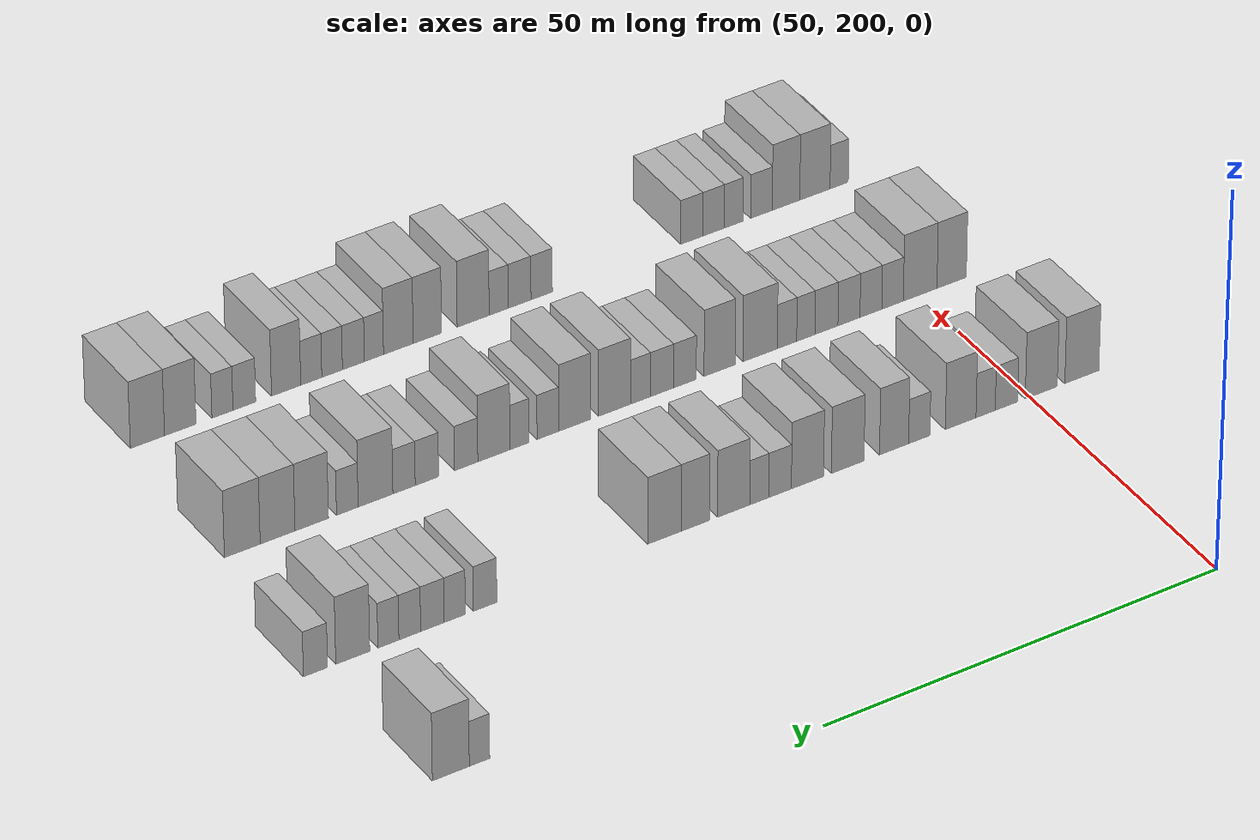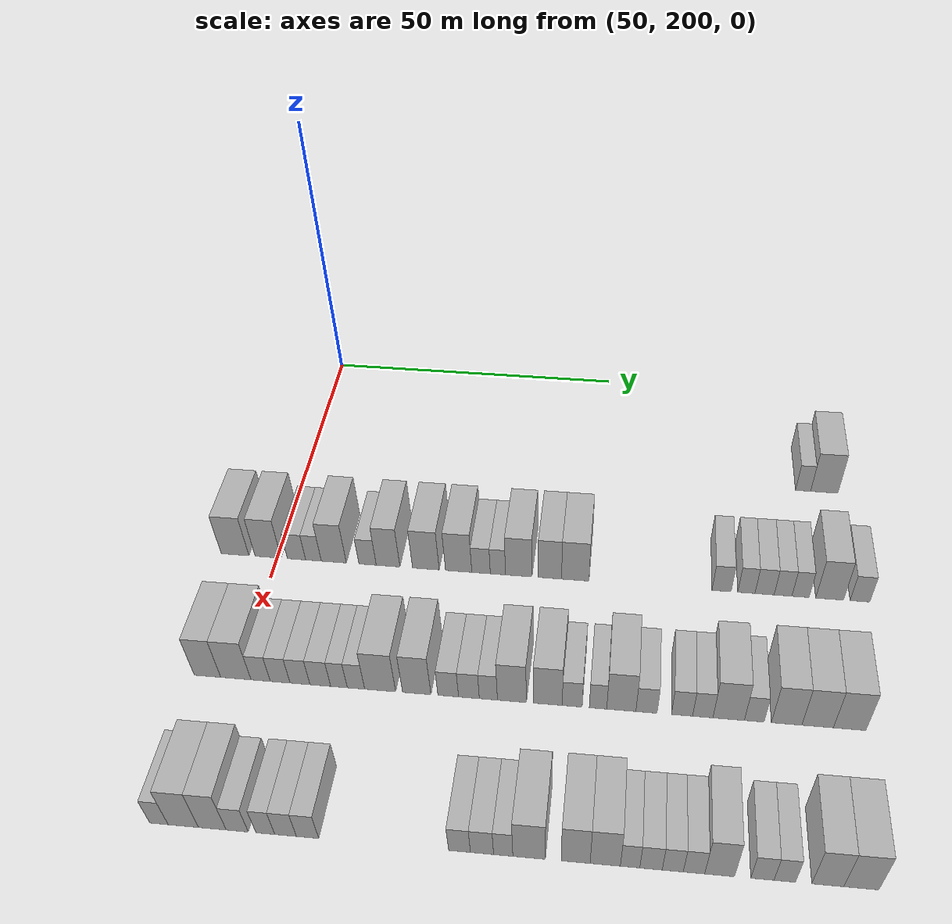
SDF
<sdf version="1.6">
 <world name="default">
  <model name="building_540">
   <static>1</static>
   <pose>69.0000 283.5938 0 0.000000 0.000000 0.000000</pose>
   <link name="link">
    <pose>0 0 3.00 0 0 0</pose>
    <collision name="collision"><geometry><box><size>10.0000 2.4946 6.0000</size></box></geometry></collision>
    <visual name="visual">
     <cast_shadows>0</cast_shadows>
     <geometry><box><size>10.0000 2.4946 6.0000</size></box></geometry>
     <material>
      <script>
       <uri>model://HANNAS_wall/materials/scripts</uri>
       <uri>model://HANNAS_wall/materials/textures</uri>
       <name>vrc/HANNAS_wall</name>
      </script>
     </material>
    </visual>
   </link>
  </model>
  <model name="building_541">
   <static>1</static>
   <pose>69.0000 287.0839 0 0.000000 0.000000 0.000000</pose>
   <link name="link">
    <pose>0 0 4.50 0 0 0</pose>
    <collision name="collision"><geometry><box><size>10.0000 4.4857 9.0000</size></box></geometry></collision>
    <visual name="visual">
     <cast_shadows>0</cast_shadows>
     <geometry><box><size>10.0000 4.4857 9.0000</size></box></geometry>
     <material>
      <script>
       <uri>model://HANNAS_wall/materials/scripts</uri>
       <uri>model://HANNAS_wall/materials/textures</uri>
       <name>vrc/HANNAS_wall</name>
      </script>
     </material>
    </visual>
   </link>
  </model>
  <model name="building_701">
   <static>1</static>
   <pose>91.0000 193.1740 0 0.000000 0.000000 0.000000</pose>
   <link name="link">
    <pose>0 0 4.50 0 0 0</pose>
    <collision name="collision"><geometry><box><size>10.0000 4.4827 9.0000</size></box></geometry></collision>
    <visual name="visual">
     <cast_shadows>0</cast_shadows>
     <geometry><box><size>10.0000 4.4827 9.0000</size></box></geometry>
     <material>
      <script>
       <uri>model://HANNAS_wall/materials/scripts</uri>
       <uri>model://HANNAS_wall/materials/textures</uri>
       <name>vrc/HANNAS_wall</name>
      </script>
     </material>
    </visual>
   </link>
  </model>
  <model name="building_702">
   <static>1</static>
   <pose>91.0000 198.5128 0 0.000000 0.000000 0.000000</pose>
   <link name="link">
    <pose>0 0 4.50 0 0 0</pose>
    <collision name="collision"><geometry><box><size>10.0000 4.1948 9.0000</size></box></geometry></collision>
    <visual name="visual">
     <cast_shadows>0</cast_shadows>
     <geometry><box><size>10.0000 4.1948 9.0000</size></box></geometry>
     <material>
      <script>
       <uri>model://HANNAS_wall/materials/scripts</uri>
       <uri>model://HANNAS_wall/materials/textures</uri>
       <name>vrc/HANNAS_wall</name>
      </script>
     </material>
    </visual>
   </link>
  </model>
  <model name="building_703">
   <static>1</static>
   <pose>91.0000 203.0746 0 0.000000 0.000000 0.000000</pose>
   <link name="link">
    <pose>0 0 3.00 0 0 0</pose>
    <collision name="collision"><geometry><box><size>10.0000 2.9290 6.0000</size></box></geometry></collision>
    <visual name="visual">
     <cast_shadows>0</cast_shadows>
     <geometry><box><size>10.0000 2.9290 6.0000</size></box></geometry>
     <material>
      <script>
       <uri>model://HANNAS_wall/materials/scripts</uri>
       <uri>model://HANNAS_wall/materials/textures</uri>
       <name>vrc/HANNAS_wall</name>
      </script>
     </material>
    </visual>
   </link>
  </model>
  <model name="building_704">
   <static>1</static>
   <pose>91.0000 205.7953 0 0.000000 0.000000 0.000000</pose>
   <link name="link">
    <pose>0 0 3.00 0 0 0</pose>
    <collision name="collision"><geometry><box><size>10.0000 2.5124 6.0000</size></box></geometry></collision>
    <visual name="visual">
     <cast_shadows>0</cast_shadows>
     <geometry><box><size>10.0000 2.5124 6.0000</size></box></geometry>
     <material>
      <script>
       <uri>model://HANNAS_wall/materials/scripts</uri>
       <uri>model://HANNAS_wall/materials/textures</uri>
       <name>vrc/HANNAS_wall</name>
      </script>
     </material>
    </visual>
   </link>
  </model>
  <model name="building_705">
   <static>1</static>
   <pose>91.0000 209.0476 0 0.000000 0.000000 0.000000</pose>
   <link name="link">
    <pose>0 0 4.50 0 0 0</pose>
    <collision name="collision"><geometry><box><size>10.0000 3.9921 9.0000</size></box></geometry></collision>
    <visual name="visual">
     <cast_shadows>0</cast_shadows>
     <geometry><box><size>10.0000 3.9921 9.0000</size></box></geometry>
     <material>
      <script>
       <uri>model://HANNAS_wall/materials/scripts</uri>
       <uri>model://HANNAS_wall/materials/textures</uri>
       <name>vrc/HANNAS_wall</name>
      </script>
     </material>
    </visual>
   </link>
  </model>
  <model name="building_706">
   <static>1</static>
   <pose>91.0000 214.4256 0 0.000000 0.000000 0.000000</pose>
   <link name="link">
    <pose>0 0 3.00 0 0 0</pose>
    <collision name="collision"><geometry><box><size>10.0000 2.7640 6.0000</size></box></geometry></collision>
    <visual name="visual">
     <cast_shadows>0</cast_shadows>
     <geometry><box><size>10.0000 2.7640 6.0000</size></box></geometry>
     <material>
      <script>
       <uri>model://HANNAS_wall/materials/scripts</uri>
       <uri>model://HANNAS_wall/materials/textures</uri>
       <name>vrc/HANNAS_wall</name>
      </script>
     </material>
    </visual>
   </link>
  </model>
  <model name="building_707">
   <static>1</static>
   <pose>91.0000 217.6890 0 0.000000 0.000000 0.000000</pose>
   <link name="link">
    <pose>0 0 4.50 0 0 0</pose>
    <collision name="collision"><geometry><box><size>10.0000 3.7628 9.0000</size></box></geometry></collision>
    <visual name="visual">
     <cast_shadows>0</cast_shadows>
     <geometry><box><size>10.0000 3.7628 9.0000</size></box></geometry>
     <material>
      <script>
       <uri>model://HANNAS_wall/materials/scripts</uri>
       <uri>model://HANNAS_wall/materials/textures</uri>
       <name>vrc/HANNAS_wall</name>
      </script>
     </material>
    </visual>
   </link>
  </model>
  <model name="building_708">
   <static>1</static>
   <pose>91.0000 223.6718 0 0.000000 0.000000 0.000000</pose>
   <link name="link">
    <pose>0 0 4.50 0 0 0</pose>
    <collision name="collision"><geometry><box><size>10.0000 4.2029 9.0000</size></box></geometry></collision>
    <visual name="visual">
     <cast_shadows>0</cast_shadows>
     <geometry><box><size>10.0000 4.2029 9.0000</size></box></geometry>
     <material>
      <script>
       <uri>model://HANNAS_wall/materials/scripts</uri>
       <uri>model://HANNAS_wall/materials/textures</uri>
       <name>vrc/HANNAS_wall</name>
      </script>
     </material>
    </visual>
   </link>
  </model>
  <model name="building_709">
   <static>1</static>
   <pose>91.0000 228.8378 0 0.000000 0.000000 0.000000</pose>
   <link name="link">
    <pose>0 0 4.50 0 0 0</pose>
    <collision name="collision"><geometry><box><size>10.0000 4.1292 9.0000</size></box></geometry></collision>
    <visual name="visual">
     <cast_shadows>0</cast_shadows>
     <geometry><box><size>10.0000 4.1292 9.0000</size></box></geometry>
     <material>
      <script>
       <uri>model://HANNAS_wall/materials/scripts</uri>
       <uri>model://HANNAS_wall/materials/textures</uri>
       <name>vrc/HANNAS_wall</name>
      </script>
     </material>
    </visual>
   </link>
  </model>
  <model name="building_710">
   <static>1</static>
   <pose>91.0000 232.3506 0 0.000000 0.000000 0.000000</pose>
   <link name="link">
    <pose>0 0 3.00 0 0 0</pose>
    <collision name="collision"><geometry><box><size>10.0000 2.8962 6.0000</size></box></geometry></collision>
    <visual name="visual">
     <cast_shadows>0</cast_shadows>
     <geometry><box><size>10.0000 2.8962 6.0000</size></box></geometry>
     <material>
      <script>
       <uri>model://HANNAS_wall/materials/scripts</uri>
       <uri>model://HANNAS_wall/materials/textures</uri>
       <name>vrc/HANNAS_wall</name>
      </script>
     </material>
    </visual>
   </link>
  </model>
  <model name="building_711">
   <static>1</static>
   <pose>91.0000 234.9987 0 0.000000 0.000000 0.000000</pose>
   <link name="link">
    <pose>0 0 3.00 0 0 0</pose>
    <collision name="collision"><geometry><box><size>10.0000 2.4000 6.0000</size></box></geometry></collision>
    <visual name="visual">
     <cast_shadows>0</cast_shadows>
     <geometry><box><size>10.0000 2.4000 6.0000</size></box></geometry>
     <material>
      <script>
       <uri>model://HANNAS_wall/materials/scripts</uri>
       <uri>model://HANNAS_wall/materials/textures</uri>
       <name>vrc/HANNAS_wall</name>
      </script>
     </material>
    </visual>
   </link>
  </model>
  <model name="building_712">
   <static>1</static>
   <pose>91.0000 238.2613 0 0.000000 0.000000 0.000000</pose>
   <link name="link">
    <pose>0 0 4.50 0 0 0</pose>
    <collision name="collision"><geometry><box><size>10.0000 4.1251 9.0000</size></box></geometry></collision>
    <visual name="visual">
     <cast_shadows>0</cast_shadows>
     <geometry><box><size>10.0000 4.1251 9.0000</size></box></geometry>
     <material>
      <script>
       <uri>model://HANNAS_wall/materials/scripts</uri>
       <uri>model://HANNAS_wall/materials/textures</uri>
       <name>vrc/HANNAS_wall</name>
      </script>
     </material>
    </visual>
   </link>
  </model>
  <model name="building_713">
   <static>1</static>
   <pose>91.0000 243.1254 0 0.000000 0.000000 0.000000</pose>
   <link name="link">
    <pose>0 0 4.50 0 0 0</pose>
    <collision name="collision"><geometry><box><size>10.0000 3.6031 9.0000</size></box></geometry></collision>
    <visual name="visual">
     <cast_shadows>0</cast_shadows>
     <geometry><box><size>10.0000 3.6031 9.0000</size></box></geometry>
     <material>
      <script>
       <uri>model://HANNAS_wall/materials/scripts</uri>
       <uri>model://HANNAS_wall/materials/textures</uri>
       <name>vrc/HANNAS_wall</name>
      </script>
     </material>
    </visual>
   </link>
  </model>
  <model name="building_714">
   <static>1</static>
   <pose>91.0000 247.0495 0 0.000000 0.000000 0.000000</pose>
   <link name="link">
    <pose>0 0 4.50 0 0 0</pose>
    <collision name="collision"><geometry><box><size>10.0000 4.2451 9.0000</size></box></geometry></collision>
    <visual name="visual">
     <cast_shadows>0</cast_shadows>
     <geometry><box><size>10.0000 4.2451 9.0000</size></box></geometry>
     <material>
      <script>
       <uri>model://HANNAS_wall/materials/scripts</uri>
       <uri>model://HANNAS_wall/materials/textures</uri>
       <name>vrc/HANNAS_wall</name>
      </script>
     </material>
    </visual>
   </link>
  </model>
  <model name="building_715">
   <static>1</static>
   <pose>91.0000 269.5402 0 0.000000 0.000000 0.000000</pose>
   <link name="link">
    <pose>0 0 3.00 0 0 0</pose>
    <collision name="collision"><geometry><box><size>10.0000 2.9121 6.0000</size></box></geometry></collision>
    <visual name="visual">
     <cast_shadows>0</cast_shadows>
     <geometry><box><size>10.0000 2.9121 6.0000</size></box></geometry>
     <material>
      <script>
       <uri>model://HANNAS_wall/materials/scripts</uri>
       <uri>model://HANNAS_wall/materials/textures</uri>
       <name>vrc/HANNAS_wall</name>
      </script>
     </material>
    </visual>
   </link>
  </model>
  <model name="building_716">
   <static>1</static>
   <pose>91.0000 273.3073 0 0.000000 0.000000 0.000000</pose>
   <link name="link">
    <pose>0 0 3.00 0 0 0</pose>
    <collision name="collision"><geometry><box><size>10.0000 2.6223 6.0000</size></box></geometry></collision>
    <visual name="visual">
     <cast_shadows>0</cast_shadows>
     <geometry><box><size>10.0000 2.6223 6.0000</size></box></geometry>
     <material>
      <script>
       <uri>model://HANNAS_wall/materials/scripts</uri>
       <uri>model://HANNAS_wall/materials/textures</uri>
       <name>vrc/HANNAS_wall</name>
      </script>
     </material>
    </visual>
   </link>
  </model>
  <model name="building_717">
   <static>1</static>
   <pose>91.0000 276.0713 0 0.000000 0.000000 0.000000</pose>
   <link name="link">
    <pose>0 0 3.00 0 0 0</pose>
    <collision name="collision"><geometry><box><size>10.0000 2.9056 6.0000</size></box></geometry></collision>
    <visual name="visual">
     <cast_shadows>0</cast_shadows>
     <geometry><box><size>10.0000 2.9056 6.0000</size></box></geometry>
     <material>
      <script>
       <uri>model://HANNAS_wall/materials/scripts</uri>
       <uri>model://HANNAS_wall/materials/textures</uri>
       <name>vrc/HANNAS_wall</name>
      </script>
     </material>
    </visual>
   </link>
  </model>
  <model name="building_718">
   <static>1</static>
   <pose>91.0000 278.8679 0 0.000000 0.000000 0.000000</pose>
   <link name="link">
    <pose>0 0 3.00 0 0 0</pose>
    <collision name="collision"><geometry><box><size>10.0000 2.6875 6.0000</size></box></geometry></collision>
    <visual name="visual">
     <cast_shadows>0</cast_shadows>
     <geometry><box><size>10.0000 2.6875 6.0000</size></box></geometry>
     <material>
      <script>
       <uri>model://HANNAS_wall/materials/scripts</uri>
       <uri>model://HANNAS_wall/materials/textures</uri>
       <name>vrc/HANNAS_wall</name>
      </script>
     </material>
    </visual>
   </link>
  </model>
  <model name="building_719">
   <static>1</static>
   <pose>91.0000 281.5054 0 0.000000 0.000000 0.000000</pose>
   <link name="link">
    <pose>0 0 3.00 0 0 0</pose>
    <collision name="collision"><geometry><box><size>10.0000 2.5876 6.0000</size></box></geometry></collision>
    <visual name="visual">
     <cast_shadows>0</cast_shadows>
     <geometry><box><size>10.0000 2.5876 6.0000</size></box></geometry>
     <material>
      <script>
       <uri>model://HANNAS_wall/materials/scripts</uri>
       <uri>model://HANNAS_wall/materials/textures</uri>
       <name>vrc/HANNAS_wall</name>
      </script>
     </material>
    </visual>
   </link>
  </model>
  <model name="building_720">
   <static>1</static>
   <pose>91.0000 285.8866 0 0.000000 0.000000 0.000000</pose>
   <link name="link">
    <pose>0 0 4.50 0 0 0</pose>
    <collision name="collision"><geometry><box><size>10.0000 4.1748 9.0000</size></box></geometry></collision>
    <visual name="visual">
     <cast_shadows>0</cast_shadows>
     <geometry><box><size>10.0000 4.1748 9.0000</size></box></geometry>
     <material>
      <script>
       <uri>model://HANNAS_wall/materials/scripts</uri>
       <uri>model://HANNAS_wall/materials/textures</uri>
       <name>vrc/HANNAS_wall</name>
      </script>
     </material>
    </visual>
   </link>
  </model>
  <model name="building_721">
   <static>1</static>
   <pose>91.0000 290.4511 0 0.000000 0.000000 0.000000</pose>
   <link name="link">
    <pose>0 0 3.00 0 0 0</pose>
    <collision name="collision"><geometry><box><size>10.0000 2.9542 6.0000</size></box></geometry></collision>
    <visual name="visual">
     <cast_shadows>0</cast_shadows>
     <geometry><box><size>10.0000 2.9542 6.0000</size></box></geometry>
     <material>
      <script>
       <uri>model://HANNAS_wall/materials/scripts</uri>
       <uri>model://HANNAS_wall/materials/textures</uri>
       <name>vrc/HANNAS_wall</name>
      </script>
     </material>
    </visual>
   </link>
  </model>
  <model name="building_884">
   <static>1</static>
   <pose>113.0000 195.7243 0 0.000000 0.000000 0.000000</pose>
   <link name="link">
    <pose>0 0 4.50 0 0 0</pose>
    <collision name="collision"><geometry><box><size>10.0000 3.8899 9.0000</size></box></geometry></collision>
    <visual name="visual">
     <cast_shadows>0</cast_shadows>
     <geometry><box><size>10.0000 3.8899 9.0000</size></box></geometry>
     <material>
      <script>
       <uri>model://HANNAS_wall/materials/scripts</uri>
       <uri>model://HANNAS_wall/materials/textures</uri>
       <name>vrc/HANNAS_wall</name>
      </script>
     </material>
    </visual>
   </link>
  </model>
  <model name="building_885">
   <static>1</static>
   <pose>113.0000 199.8910 0 0.000000 0.000000 0.000000</pose>
   <link name="link">
    <pose>0 0 4.50 0 0 0</pose>
    <collision name="collision"><geometry><box><size>10.0000 4.4435 9.0000</size></box></geometry></collision>
    <visual name="visual">
     <cast_shadows>0</cast_shadows>
     <geometry><box><size>10.0000 4.4435 9.0000</size></box></geometry>
     <material>
      <script>
       <uri>model://HANNAS_wall/materials/scripts</uri>
       <uri>model://HANNAS_wall/materials/textures</uri>
       <name>vrc/HANNAS_wall</name>
      </script>
     </material>
    </visual>
   </link>
  </model>
  <model name="building_886">
   <static>1</static>
   <pose>113.0000 203.5288 0 0.000000 0.000000 0.000000</pose>
   <link name="link">
    <pose>0 0 3.00 0 0 0</pose>
    <collision name="collision"><geometry><box><size>10.0000 2.8321 6.0000</size></box></geometry></collision>
    <visual name="visual">
     <cast_shadows>0</cast_shadows>
     <geometry><box><size>10.0000 2.8321 6.0000</size></box></geometry>
     <material>
      <script>
       <uri>model://HANNAS_wall/materials/scripts</uri>
       <uri>model://HANNAS_wall/materials/textures</uri>
       <name>vrc/HANNAS_wall</name>
      </script>
     </material>
    </visual>
   </link>
  </model>
  <model name="building_887">
   <static>1</static>
   <pose>113.0000 206.3816 0 0.000000 0.000000 0.000000</pose>
   <link name="link">
    <pose>0 0 3.00 0 0 0</pose>
    <collision name="collision"><geometry><box><size>10.0000 2.8736 6.0000</size></box></geometry></collision>
    <visual name="visual">
     <cast_shadows>0</cast_shadows>
     <geometry><box><size>10.0000 2.8736 6.0000</size></box></geometry>
     <material>
      <script>
       <uri>model://HANNAS_wall/materials/scripts</uri>
       <uri>model://HANNAS_wall/materials/textures</uri>
       <name>vrc/HANNAS_wall</name>
      </script>
     </material>
    </visual>
   </link>
  </model>
  <model name="building_888">
   <static>1</static>
   <pose>113.0000 209.2658 0 0.000000 0.000000 0.000000</pose>
   <link name="link">
    <pose>0 0 3.00 0 0 0</pose>
    <collision name="collision"><geometry><box><size>10.0000 2.8949 6.0000</size></box></geometry></collision>
    <visual name="visual">
     <cast_shadows>0</cast_shadows>
     <geometry><box><size>10.0000 2.8949 6.0000</size></box></geometry>
     <material>
      <script>
       <uri>model://HANNAS_wall/materials/scripts</uri>
       <uri>model://HANNAS_wall/materials/textures</uri>
       <name>vrc/HANNAS_wall</name>
      </script>
     </material>
    </visual>
   </link>
  </model>
  <model name="building_889">
   <static>1</static>
   <pose>113.0000 212.2096 0 0.000000 0.000000 0.000000</pose>
   <link name="link">
    <pose>0 0 3.00 0 0 0</pose>
    <collision name="collision"><geometry><box><size>10.0000 2.9926 6.0000</size></box></geometry></collision>
    <visual name="visual">
     <cast_shadows>0</cast_shadows>
     <geometry><box><size>10.0000 2.9926 6.0000</size></box></geometry>
     <material>
      <script>
       <uri>model://HANNAS_wall/materials/scripts</uri>
       <uri>model://HANNAS_wall/materials/textures</uri>
       <name>vrc/HANNAS_wall</name>
      </script>
     </material>
    </visual>
   </link>
  </model>
  <model name="building_890">
   <static>1</static>
   <pose>113.0000 214.9083 0 0.000000 0.000000 0.000000</pose>
   <link name="link">
    <pose>0 0 3.00 0 0 0</pose>
    <collision name="collision"><geometry><box><size>10.0000 2.4049 6.0000</size></box></geometry></collision>
    <visual name="visual">
     <cast_shadows>0</cast_shadows>
     <geometry><box><size>10.0000 2.4049 6.0000</size></box></geometry>
     <material>
      <script>
       <uri>model://HANNAS_wall/materials/scripts</uri>
       <uri>model://HANNAS_wall/materials/textures</uri>
       <name>vrc/HANNAS_wall</name>
      </script>
     </material>
    </visual>
   </link>
  </model>
  <model name="building_891">
   <static>1</static>
   <pose>113.0000 217.3667 0 0.000000 0.000000 0.000000</pose>
   <link name="link">
    <pose>0 0 3.00 0 0 0</pose>
    <collision name="collision"><geometry><box><size>10.0000 2.5119 6.0000</size></box></geometry></collision>
    <visual name="visual">
     <cast_shadows>0</cast_shadows>
     <geometry><box><size>10.0000 2.5119 6.0000</size></box></geometry>
     <material>
      <script>
       <uri>model://HANNAS_wall/materials/scripts</uri>
       <uri>model://HANNAS_wall/materials/textures</uri>
       <name>vrc/HANNAS_wall</name>
      </script>
     </material>
    </visual>
   </link>
  </model>
  <model name="building_892">
   <static>1</static>
   <pose>113.0000 220.8557 0 0.000000 0.000000 0.000000</pose>
   <link name="link">
    <pose>0 0 4.50 0 0 0</pose>
    <collision name="collision"><geometry><box><size>10.0000 4.4663 9.0000</size></box></geometry></collision>
    <visual name="visual">
     <cast_shadows>0</cast_shadows>
     <geometry><box><size>10.0000 4.4663 9.0000</size></box></geometry>
     <material>
      <script>
       <uri>model://HANNAS_wall/materials/scripts</uri>
       <uri>model://HANNAS_wall/materials/textures</uri>
       <name>vrc/HANNAS_wall</name>
      </script>
     </material>
    </visual>
   </link>
  </model>
  <model name="building_893">
   <static>1</static>
   <pose>113.0000 226.1174 0 0.000000 0.000000 0.000000</pose>
   <link name="link">
    <pose>0 0 4.50 0 0 0</pose>
    <collision name="collision"><geometry><box><size>10.0000 4.0571 9.0000</size></box></geometry></collision>
    <visual name="visual">
     <cast_shadows>0</cast_shadows>
     <geometry><box><size>10.0000 4.0571 9.0000</size></box></geometry>
     <material>
      <script>
       <uri>model://HANNAS_wall/materials/scripts</uri>
       <uri>model://HANNAS_wall/materials/textures</uri>
       <name>vrc/HANNAS_wall</name>
      </script>
     </material>
    </visual>
   </link>
  </model>
  <model name="building_894">
   <static>1</static>
   <pose>113.0000 230.6170 0 0.000000 0.000000 0.000000</pose>
   <link name="link">
    <pose>0 0 3.00 0 0 0</pose>
    <collision name="collision"><geometry><box><size>10.0000 2.9420 6.0000</size></box></geometry></collision>
    <visual name="visual">
     <cast_shadows>0</cast_shadows>
     <geometry><box><size>10.0000 2.9420 6.0000</size></box></geometry>
     <material>
      <script>
       <uri>model://HANNAS_wall/materials/scripts</uri>
       <uri>model://HANNAS_wall/materials/textures</uri>
       <name>vrc/HANNAS_wall</name>
      </script>
     </material>
    </visual>
   </link>
  </model>
  <model name="building_895">
   <static>1</static>
   <pose>113.0000 233.5655 0 0.000000 0.000000 0.000000</pose>
   <link name="link">
    <pose>0 0 3.00 0 0 0</pose>
    <collision name="collision"><geometry><box><size>10.0000 2.9550 6.0000</size></box></geometry></collision>
    <visual name="visual">
     <cast_shadows>0</cast_shadows>
     <geometry><box><size>10.0000 2.9550 6.0000</size></box></geometry>
     <material>
      <script>
       <uri>model://HANNAS_wall/materials/scripts</uri>
       <uri>model://HANNAS_wall/materials/textures</uri>
       <name>vrc/HANNAS_wall</name>
      </script>
     </material>
    </visual>
   </link>
  </model>
  <model name="building_896">
   <static>1</static>
   <pose>113.0000 236.3300 0 0.000000 0.000000 0.000000</pose>
   <link name="link">
    <pose>0 0 3.00 0 0 0</pose>
    <collision name="collision"><geometry><box><size>10.0000 2.5739 6.0000</size></box></geometry></collision>
    <visual name="visual">
     <cast_shadows>0</cast_shadows>
     <geometry><box><size>10.0000 2.5739 6.0000</size></box></geometry>
     <material>
      <script>
       <uri>model://HANNAS_wall/materials/scripts</uri>
       <uri>model://HANNAS_wall/materials/textures</uri>
       <name>vrc/HANNAS_wall</name>
      </script>
     </material>
    </visual>
   </link>
  </model>
  <model name="building_897">
   <static>1</static>
   <pose>113.0000 239.6695 0 0.000000 0.000000 0.000000</pose>
   <link name="link">
    <pose>0 0 4.50 0 0 0</pose>
    <collision name="collision"><geometry><box><size>10.0000 4.1053 9.0000</size></box></geometry></collision>
    <visual name="visual">
     <cast_shadows>0</cast_shadows>
     <geometry><box><size>10.0000 4.1053 9.0000</size></box></geometry>
     <material>
      <script>
       <uri>model://HANNAS_wall/materials/scripts</uri>
       <uri>model://HANNAS_wall/materials/textures</uri>
       <name>vrc/HANNAS_wall</name>
      </script>
     </material>
    </visual>
   </link>
  </model>
  <model name="building_898">
   <static>1</static>
   <pose>113.0000 244.7543 0 0.000000 0.000000 0.000000</pose>
   <link name="link">
    <pose>0 0 4.50 0 0 0</pose>
    <collision name="collision"><geometry><box><size>10.0000 4.0642 9.0000</size></box></geometry></collision>
    <visual name="visual">
     <cast_shadows>0</cast_shadows>
     <geometry><box><size>10.0000 4.0642 9.0000</size></box></geometry>
     <material>
      <script>
       <uri>model://HANNAS_wall/materials/scripts</uri>
       <uri>model://HANNAS_wall/materials/textures</uri>
       <name>vrc/HANNAS_wall</name>
      </script>
     </material>
    </visual>
   </link>
  </model>
  <model name="building_899">
   <static>1</static>
   <pose>113.0000 248.1827 0 0.000000 0.000000 0.000000</pose>
   <link name="link">
    <pose>0 0 3.00 0 0 0</pose>
    <collision name="collision"><geometry><box><size>10.0000 2.7926 6.0000</size></box></geometry></collision>
    <visual name="visual">
     <cast_shadows>0</cast_shadows>
     <geometry><box><size>10.0000 2.7926 6.0000</size></box></geometry>
     <material>
      <script>
       <uri>model://HANNAS_wall/materials/scripts</uri>
       <uri>model://HANNAS_wall/materials/textures</uri>
       <name>vrc/HANNAS_wall</name>
      </script>
     </material>
    </visual>
   </link>
  </model>
  <model name="building_900">
   <static>1</static>
   <pose>113.0000 251.7955 0 0.000000 0.000000 0.000000</pose>
   <link name="link">
    <pose>0 0 3.00 0 0 0</pose>
    <collision name="collision"><geometry><box><size>10.0000 2.4329 6.0000</size></box></geometry></collision>
    <visual name="visual">
     <cast_shadows>0</cast_shadows>
     <geometry><box><size>10.0000 2.4329 6.0000</size></box></geometry>
     <material>
      <script>
       <uri>model://HANNAS_wall/materials/scripts</uri>
       <uri>model://HANNAS_wall/materials/textures</uri>
       <name>vrc/HANNAS_wall</name>
      </script>
     </material>
    </visual>
   </link>
  </model>
  <model name="building_901">
   <static>1</static>
   <pose>113.0000 255.0531 0 0.000000 0.000000 0.000000</pose>
   <link name="link">
    <pose>0 0 4.50 0 0 0</pose>
    <collision name="collision"><geometry><box><size>10.0000 4.0824 9.0000</size></box></geometry></collision>
    <visual name="visual">
     <cast_shadows>0</cast_shadows>
     <geometry><box><size>10.0000 4.0824 9.0000</size></box></geometry>
     <material>
      <script>
       <uri>model://HANNAS_wall/materials/scripts</uri>
       <uri>model://HANNAS_wall/materials/textures</uri>
       <name>vrc/HANNAS_wall</name>
      </script>
     </material>
    </visual>
   </link>
  </model>
  <model name="building_902">
   <static>1</static>
   <pose>113.0000 258.5711 0 0.000000 0.000000 0.000000</pose>
   <link name="link">
    <pose>0 0 3.00 0 0 0</pose>
    <collision name="collision"><geometry><box><size>10.0000 2.9535 6.0000</size></box></geometry></collision>
    <visual name="visual">
     <cast_shadows>0</cast_shadows>
     <geometry><box><size>10.0000 2.9535 6.0000</size></box></geometry>
     <material>
      <script>
       <uri>model://HANNAS_wall/materials/scripts</uri>
       <uri>model://HANNAS_wall/materials/textures</uri>
       <name>vrc/HANNAS_wall</name>
      </script>
     </material>
    </visual>
   </link>
  </model>
  <model name="building_903">
   <static>1</static>
   <pose>113.0000 263.5199 0 0.000000 0.000000 0.000000</pose>
   <link name="link">
    <pose>0 0 3.00 0 0 0</pose>
    <collision name="collision"><geometry><box><size>10.0000 2.9441 6.0000</size></box></geometry></collision>
    <visual name="visual">
     <cast_shadows>0</cast_shadows>
     <geometry><box><size>10.0000 2.9441 6.0000</size></box></geometry>
     <material>
      <script>
       <uri>model://HANNAS_wall/materials/scripts</uri>
       <uri>model://HANNAS_wall/materials/textures</uri>
       <name>vrc/HANNAS_wall</name>
      </script>
     </material>
    </visual>
   </link>
  </model>
  <model name="building_904">
   <static>1</static>
   <pose>113.0000 266.3961 0 0.000000 0.000000 0.000000</pose>
   <link name="link">
    <pose>0 0 3.00 0 0 0</pose>
    <collision name="collision"><geometry><box><size>10.0000 2.8085 6.0000</size></box></geometry></collision>
    <visual name="visual">
     <cast_shadows>0</cast_shadows>
     <geometry><box><size>10.0000 2.8085 6.0000</size></box></geometry>
     <material>
      <script>
       <uri>model://HANNAS_wall/materials/scripts</uri>
       <uri>model://HANNAS_wall/materials/textures</uri>
       <name>vrc/HANNAS_wall</name>
      </script>
     </material>
    </visual>
   </link>
  </model>
  <model name="building_905">
   <static>1</static>
   <pose>113.0000 269.9735 0 0.000000 0.000000 0.000000</pose>
   <link name="link">
    <pose>0 0 4.50 0 0 0</pose>
    <collision name="collision"><geometry><box><size>10.0000 4.3463 9.0000</size></box></geometry></collision>
    <visual name="visual">
     <cast_shadows>0</cast_shadows>
     <geometry><box><size>10.0000 4.3463 9.0000</size></box></geometry>
     <material>
      <script>
       <uri>model://HANNAS_wall/materials/scripts</uri>
       <uri>model://HANNAS_wall/materials/textures</uri>
       <name>vrc/HANNAS_wall</name>
      </script>
     </material>
    </visual>
   </link>
  </model>
  <model name="building_906">
   <static>1</static>
   <pose>113.0000 273.5010 0 0.000000 0.000000 0.000000</pose>
   <link name="link">
    <pose>0 0 3.00 0 0 0</pose>
    <collision name="collision"><geometry><box><size>10.0000 2.7088 6.0000</size></box></geometry></collision>
    <visual name="visual">
     <cast_shadows>0</cast_shadows>
     <geometry><box><size>10.0000 2.7088 6.0000</size></box></geometry>
     <material>
      <script>
       <uri>model://HANNAS_wall/materials/scripts</uri>
       <uri>model://HANNAS_wall/materials/textures</uri>
       <name>vrc/HANNAS_wall</name>
      </script>
     </material>
    </visual>
   </link>
  </model>
  <model name="building_907">
   <static>1</static>
   <pose>113.0000 277.9385 0 0.000000 0.000000 0.000000</pose>
   <link name="link">
    <pose>0 0 4.50 0 0 0</pose>
    <collision name="collision"><geometry><box><size>10.0000 4.1662 9.0000</size></box></geometry></collision>
    <visual name="visual">
     <cast_shadows>0</cast_shadows>
     <geometry><box><size>10.0000 4.1662 9.0000</size></box></geometry>
     <material>
      <script>
       <uri>model://HANNAS_wall/materials/scripts</uri>
       <uri>model://HANNAS_wall/materials/textures</uri>
       <name>vrc/HANNAS_wall</name>
      </script>
     </material>
    </visual>
   </link>
  </model>
  <model name="building_908">
   <static>1</static>
   <pose>113.0000 282.1835 0 0.000000 0.000000 0.000000</pose>
   <link name="link">
    <pose>0 0 4.50 0 0 0</pose>
    <collision name="collision"><geometry><box><size>10.0000 4.3238 9.0000</size></box></geometry></collision>
    <visual name="visual">
     <cast_shadows>0</cast_shadows>
     <geometry><box><size>10.0000 4.3238 9.0000</size></box></geometry>
     <material>
      <script>
       <uri>model://HANNAS_wall/materials/scripts</uri>
       <uri>model://HANNAS_wall/materials/textures</uri>
       <name>vrc/HANNAS_wall</name>
      </script>
     </material>
    </visual>
   </link>
  </model>
  <model name="building_909">
   <static>1</static>
   <pose>113.0000 286.5595 0 0.000000 0.000000 0.000000</pose>
   <link name="link">
    <pose>0 0 4.50 0 0 0</pose>
    <collision name="collision"><geometry><box><size>10.0000 4.4284 9.0000</size></box></geometry></collision>
    <visual name="visual">
     <cast_shadows>0</cast_shadows>
     <geometry><box><size>10.0000 4.4284 9.0000</size></box></geometry>
     <material>
      <script>
       <uri>model://HANNAS_wall/materials/scripts</uri>
       <uri>model://HANNAS_wall/materials/textures</uri>
       <name>vrc/HANNAS_wall</name>
      </script>
     </material>
    </visual>
   </link>
  </model>
  <model name="building_1085">
   <static>1</static>
   <pose>135.0000 196.3331 0 0.000000 0.000000 0.000000</pose>
   <link name="link">
    <pose>0 0 3.00 0 0 0</pose>
    <collision name="collision"><geometry><box><size>10.0000 2.4320 6.0000</size></box></geometry></collision>
    <visual name="visual">
     <cast_shadows>0</cast_shadows>
     <geometry><box><size>10.0000 2.4320 6.0000</size></box></geometry>
     <material>
      <script>
       <uri>model://HANNAS_wall/materials/scripts</uri>
       <uri>model://HANNAS_wall/materials/textures</uri>
       <name>vrc/HANNAS_wall</name>
      </script>
     </material>
    </visual>
   </link>
  </model>
  <model name="building_1086">
   <static>1</static>
   <pose>135.0000 199.5617 0 0.000000 0.000000 0.000000</pose>
   <link name="link">
    <pose>0 0 4.50 0 0 0</pose>
    <collision name="collision"><geometry><box><size>10.0000 4.0253 9.0000</size></box></geometry></collision>
    <visual name="visual">
     <cast_shadows>0</cast_shadows>
     <geometry><box><size>10.0000 4.0253 9.0000</size></box></geometry>
     <material>
      <script>
       <uri>model://HANNAS_wall/materials/scripts</uri>
       <uri>model://HANNAS_wall/materials/textures</uri>
       <name>vrc/HANNAS_wall</name>
      </script>
     </material>
    </visual>
   </link>
  </model>
  <model name="building_1087">
   <static>1</static>
   <pose>135.0000 203.3992 0 0.000000 0.000000 0.000000</pose>
   <link name="link">
    <pose>0 0 4.50 0 0 0</pose>
    <collision name="collision"><geometry><box><size>10.0000 3.6497 9.0000</size></box></geometry></collision>
    <visual name="visual">
     <cast_shadows>0</cast_shadows>
     <geometry><box><size>10.0000 3.6497 9.0000</size></box></geometry>
     <material>
      <script>
       <uri>model://HANNAS_wall/materials/scripts</uri>
       <uri>model://HANNAS_wall/materials/textures</uri>
       <name>vrc/HANNAS_wall</name>
      </script>
     </material>
    </visual>
   </link>
  </model>
  <model name="building_1088">
   <static>1</static>
   <pose>135.0000 206.6691 0 0.000000 0.000000 0.000000</pose>
   <link name="link">
    <pose>0 0 3.00 0 0 0</pose>
    <collision name="collision"><geometry><box><size>10.0000 2.8901 6.0000</size></box></geometry></collision>
    <visual name="visual">
     <cast_shadows>0</cast_shadows>
     <geometry><box><size>10.0000 2.8901 6.0000</size></box></geometry>
     <material>
      <script>
       <uri>model://HANNAS_wall/materials/scripts</uri>
       <uri>model://HANNAS_wall/materials/textures</uri>
       <name>vrc/HANNAS_wall</name>
      </script>
     </material>
    </visual>
   </link>
  </model>
  <model name="building_1089">
   <static>1</static>
   <pose>135.0000 210.3527 0 0.000000 0.000000 0.000000</pose>
   <link name="link">
    <pose>0 0 3.00 0 0 0</pose>
    <collision name="collision"><geometry><box><size>10.0000 2.4772 6.0000</size></box></geometry></collision>
    <visual name="visual">
     <cast_shadows>0</cast_shadows>
     <geometry><box><size>10.0000 2.4772 6.0000</size></box></geometry>
     <material>
      <script>
       <uri>model://HANNAS_wall/materials/scripts</uri>
       <uri>model://HANNAS_wall/materials/textures</uri>
       <name>vrc/HANNAS_wall</name>
      </script>
     </material>
    </visual>
   </link>
  </model>
  <model name="building_1090">
   <static>1</static>
   <pose>135.0000 213.0006 0 0.000000 0.000000 0.000000</pose>
   <link name="link">
    <pose>0 0 3.00 0 0 0</pose>
    <collision name="collision"><geometry><box><size>10.0000 2.8185 6.0000</size></box></geometry></collision>
    <visual name="visual">
     <cast_shadows>0</cast_shadows>
     <geometry><box><size>10.0000 2.8185 6.0000</size></box></geometry>
     <material>
      <script>
       <uri>model://HANNAS_wall/materials/scripts</uri>
       <uri>model://HANNAS_wall/materials/textures</uri>
       <name>vrc/HANNAS_wall</name>
      </script>
     </material>
    </visual>
   </link>
  </model>
  <model name="building_1091">
   <static>1</static>
   <pose>135.0000 215.8643 0 0.000000 0.000000 0.000000</pose>
   <link name="link">
    <pose>0 0 3.00 0 0 0</pose>
    <collision name="collision"><geometry><box><size>10.0000 2.9090 6.0000</size></box></geometry></collision>
    <visual name="visual">
     <cast_shadows>0</cast_shadows>
     <geometry><box><size>10.0000 2.9090 6.0000</size></box></geometry>
     <material>
      <script>
       <uri>model://HANNAS_wall/materials/scripts</uri>
       <uri>model://HANNAS_wall/materials/textures</uri>
       <name>vrc/HANNAS_wall</name>
      </script>
     </material>
    </visual>
   </link>
  </model>
  <model name="building_1092">
   <static>1</static>
   <pose>135.0000 235.4837 0 0.000000 0.000000 0.000000</pose>
   <link name="link">
    <pose>0 0 3.00 0 0 0</pose>
    <collision name="collision"><geometry><box><size>10.0000 2.7766 6.0000</size></box></geometry></collision>
    <visual name="visual">
     <cast_shadows>0</cast_shadows>
     <geometry><box><size>10.0000 2.7766 6.0000</size></box></geometry>
     <material>
      <script>
       <uri>model://HANNAS_wall/materials/scripts</uri>
       <uri>model://HANNAS_wall/materials/textures</uri>
       <name>vrc/HANNAS_wall</name>
      </script>
     </material>
    </visual>
   </link>
  </model>
  <model name="building_1093">
   <static>1</static>
   <pose>135.0000 238.3467 0 0.000000 0.000000 0.000000</pose>
   <link name="link">
    <pose>0 0 3.00 0 0 0</pose>
    <collision name="collision"><geometry><box><size>10.0000 2.9496 6.0000</size></box></geometry></collision>
    <visual name="visual">
     <cast_shadows>0</cast_shadows>
     <geometry><box><size>10.0000 2.9496 6.0000</size></box></geometry>
     <material>
      <script>
       <uri>model://HANNAS_wall/materials/scripts</uri>
       <uri>model://HANNAS_wall/materials/textures</uri>
       <name>vrc/HANNAS_wall</name>
      </script>
     </material>
    </visual>
   </link>
  </model>
  <model name="building_1094">
   <static>1</static>
   <pose>135.0000 241.0483 0 0.000000 0.000000 0.000000</pose>
   <link name="link">
    <pose>0 0 3.00 0 0 0</pose>
    <collision name="collision"><geometry><box><size>10.0000 2.4535 6.0000</size></box></geometry></collision>
    <visual name="visual">
     <cast_shadows>0</cast_shadows>
     <geometry><box><size>10.0000 2.4535 6.0000</size></box></geometry>
     <material>
      <script>
       <uri>model://HANNAS_wall/materials/scripts</uri>
       <uri>model://HANNAS_wall/materials/textures</uri>
       <name>vrc/HANNAS_wall</name>
      </script>
     </material>
    </visual>
   </link>
  </model>
  <model name="building_1095">
   <static>1</static>
   <pose>135.0000 244.3363 0 0.000000 0.000000 0.000000</pose>
   <link name="link">
    <pose>0 0 4.50 0 0 0</pose>
    <collision name="collision"><geometry><box><size>10.0000 4.1225 9.0000</size></box></geometry></collision>
    <visual name="visual">
     <cast_shadows>0</cast_shadows>
     <geometry><box><size>10.0000 4.1225 9.0000</size></box></geometry>
     <material>
      <script>
       <uri>model://HANNAS_wall/materials/scripts</uri>
       <uri>model://HANNAS_wall/materials/textures</uri>
       <name>vrc/HANNAS_wall</name>
      </script>
     </material>
    </visual>
   </link>
  </model>
  <model name="building_1096">
   <static>1</static>
   <pose>135.0000 250.2190 0 0.000000 0.000000 0.000000</pose>
   <link name="link">
    <pose>0 0 4.50 0 0 0</pose>
    <collision name="collision"><geometry><box><size>10.0000 3.6430 9.0000</size></box></geometry></collision>
    <visual name="visual">
     <cast_shadows>0</cast_shadows>
     <geometry><box><size>10.0000 3.6430 9.0000</size></box></geometry>
     <material>
      <script>
       <uri>model://HANNAS_wall/materials/scripts</uri>
       <uri>model://HANNAS_wall/materials/textures</uri>
       <name>vrc/HANNAS_wall</name>
      </script>
     </material>
    </visual>
   </link>
  </model>
  <model name="building_1097">
   <static>1</static>
   <pose>135.0000 253.9399 0 0.000000 0.000000 0.000000</pose>
   <link name="link">
    <pose>0 0 4.50 0 0 0</pose>
    <collision name="collision"><geometry><box><size>10.0000 3.7988 9.0000</size></box></geometry></collision>
    <visual name="visual">
     <cast_shadows>0</cast_shadows>
     <geometry><box><size>10.0000 3.7988 9.0000</size></box></geometry>
     <material>
      <script>
       <uri>model://HANNAS_wall/materials/scripts</uri>
       <uri>model://HANNAS_wall/materials/textures</uri>
       <name>vrc/HANNAS_wall</name>
      </script>
     </material>
    </visual>
   </link>
  </model>
  <model name="building_1098">
   <static>1</static>
   <pose>135.0000 257.0557 0 0.000000 0.000000 0.000000</pose>
   <link name="link">
    <pose>0 0 3.00 0 0 0</pose>
    <collision name="collision"><geometry><box><size>10.0000 2.4327 6.0000</size></box></geometry></collision>
    <visual name="visual">
     <cast_shadows>0</cast_shadows>
     <geometry><box><size>10.0000 2.4327 6.0000</size></box></geometry>
     <material>
      <script>
       <uri>model://HANNAS_wall/materials/scripts</uri>
       <uri>model://HANNAS_wall/materials/textures</uri>
       <name>vrc/HANNAS_wall</name>
      </script>
     </material>
    </visual>
   </link>
  </model>
  <model name="building_1099">
   <static>1</static>
   <pose>135.0000 259.6751 0 0.000000 0.000000 0.000000</pose>
   <link name="link">
    <pose>0 0 3.00 0 0 0</pose>
    <collision name="collision"><geometry><box><size>10.0000 2.8062 6.0000</size></box></geometry></collision>
    <visual name="visual">
     <cast_shadows>0</cast_shadows>
     <geometry><box><size>10.0000 2.8062 6.0000</size></box></geometry>
     <material>
      <script>
       <uri>model://HANNAS_wall/materials/scripts</uri>
       <uri>model://HANNAS_wall/materials/textures</uri>
       <name>vrc/HANNAS_wall</name>
      </script>
     </material>
    </visual>
   </link>
  </model>
  <model name="building_1100">
   <static>1</static>
   <pose>135.0000 262.3899 0 0.000000 0.000000 0.000000</pose>
   <link name="link">
    <pose>0 0 3.00 0 0 0</pose>
    <collision name="collision"><geometry><box><size>10.0000 2.6235 6.0000</size></box></geometry></collision>
    <visual name="visual">
     <cast_shadows>0</cast_shadows>
     <geometry><box><size>10.0000 2.6235 6.0000</size></box></geometry>
     <material>
      <script>
       <uri>model://HANNAS_wall/materials/scripts</uri>
       <uri>model://HANNAS_wall/materials/textures</uri>
       <name>vrc/HANNAS_wall</name>
      </script>
     </material>
    </visual>
   </link>
  </model>
  <model name="building_1101">
   <static>1</static>
   <pose>135.0000 265.0354 0 0.000000 0.000000 0.000000</pose>
   <link name="link">
    <pose>0 0 3.00 0 0 0</pose>
    <collision name="collision"><geometry><box><size>10.0000 2.6675 6.0000</size></box></geometry></collision>
    <visual name="visual">
     <cast_shadows>0</cast_shadows>
     <geometry><box><size>10.0000 2.6675 6.0000</size></box></geometry>
     <material>
      <script>
       <uri>model://HANNAS_wall/materials/scripts</uri>
       <uri>model://HANNAS_wall/materials/textures</uri>
       <name>vrc/HANNAS_wall</name>
      </script>
     </material>
    </visual>
   </link>
  </model>
  <model name="building_1102">
   <static>1</static>
   <pose>135.0000 268.2189 0 0.000000 0.000000 0.000000</pose>
   <link name="link">
    <pose>0 0 4.50 0 0 0</pose>
    <collision name="collision"><geometry><box><size>10.0000 3.6995 9.0000</size></box></geometry></collision>
    <visual name="visual">
     <cast_shadows>0</cast_shadows>
     <geometry><box><size>10.0000 3.6995 9.0000</size></box></geometry>
     <material>
      <script>
       <uri>model://HANNAS_wall/materials/scripts</uri>
       <uri>model://HANNAS_wall/materials/textures</uri>
       <name>vrc/HANNAS_wall</name>
      </script>
     </material>
    </visual>
   </link>
  </model>
  <model name="building_1103">
   <static>1</static>
   <pose>135.0000 273.4992 0 0.000000 0.000000 0.000000</pose>
   <link name="link">
    <pose>0 0 3.00 0 0 0</pose>
    <collision name="collision"><geometry><box><size>10.0000 2.8612 6.0000</size></box></geometry></collision>
    <visual name="visual">
     <cast_shadows>0</cast_shadows>
     <geometry><box><size>10.0000 2.8612 6.0000</size></box></geometry>
     <material>
      <script>
       <uri>model://HANNAS_wall/materials/scripts</uri>
       <uri>model://HANNAS_wall/materials/textures</uri>
       <name>vrc/HANNAS_wall</name>
      </script>
     </material>
    </visual>
   </link>
  </model>
  <model name="building_1104">
   <static>1</static>
   <pose>135.0000 276.2546 0 0.000000 0.000000 0.000000</pose>
   <link name="link">
    <pose>0 0 3.00 0 0 0</pose>
    <collision name="collision"><geometry><box><size>10.0000 2.6497 6.0000</size></box></geometry></collision>
    <visual name="visual">
     <cast_shadows>0</cast_shadows>
     <geometry><box><size>10.0000 2.6497 6.0000</size></box></geometry>
     <material>
      <script>
       <uri>model://HANNAS_wall/materials/scripts</uri>
       <uri>model://HANNAS_wall/materials/textures</uri>
       <name>vrc/HANNAS_wall</name>
      </script>
     </material>
    </visual>
   </link>
  </model>
  <model name="building_1105">
   <static>1</static>
   <pose>135.0000 281.5457 0 0.000000 0.000000 0.000000</pose>
   <link name="link">
    <pose>0 0 4.50 0 0 0</pose>
    <collision name="collision"><geometry><box><size>10.0000 3.9325 9.0000</size></box></geometry></collision>
    <visual name="visual">
     <cast_shadows>0</cast_shadows>
     <geometry><box><size>10.0000 3.9325 9.0000</size></box></geometry>
     <material>
      <script>
       <uri>model://HANNAS_wall/materials/scripts</uri>
       <uri>model://HANNAS_wall/materials/textures</uri>
       <name>vrc/HANNAS_wall</name>
      </script>
     </material>
    </visual>
   </link>
  </model>
  <model name="building_1106">
   <static>1</static>
   <pose>135.0000 285.6458 0 0.000000 0.000000 0.000000</pose>
   <link name="link">
    <pose>0 0 4.50 0 0 0</pose>
    <collision name="collision"><geometry><box><size>10.0000 4.2677 9.0000</size></box></geometry></collision>
    <visual name="visual">
     <cast_shadows>0</cast_shadows>
     <geometry><box><size>10.0000 4.2677 9.0000</size></box></geometry>
     <material>
      <script>
       <uri>model://HANNAS_wall/materials/scripts</uri>
       <uri>model://HANNAS_wall/materials/textures</uri>
       <name>vrc/HANNAS_wall</name>
      </script>
     </material>
    </visual>
   </link>
  </model>
 </world>
</sdf>
